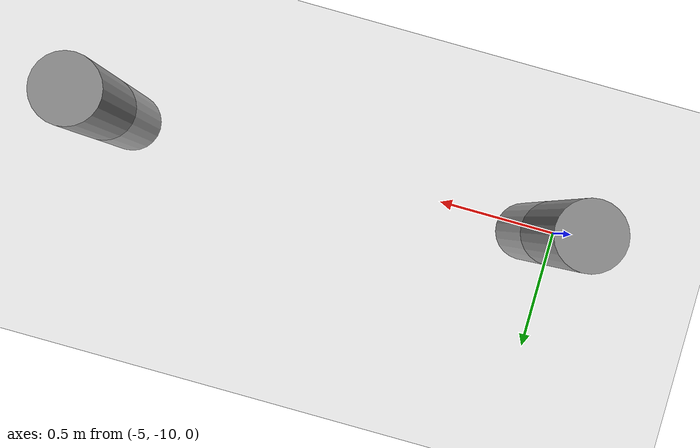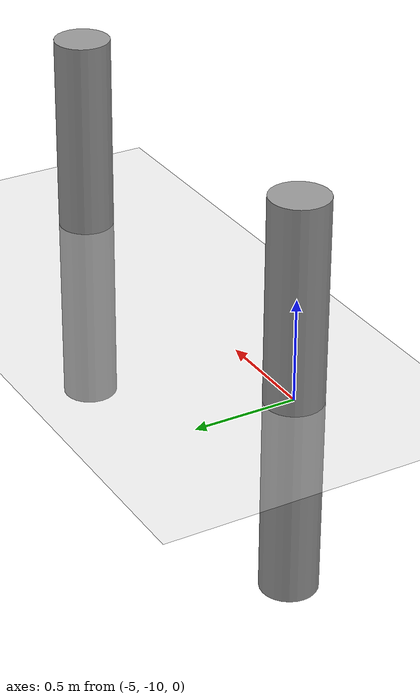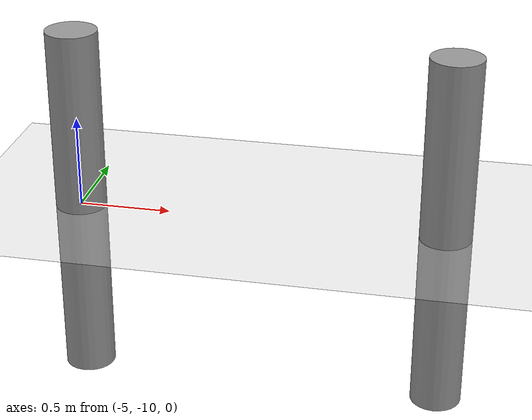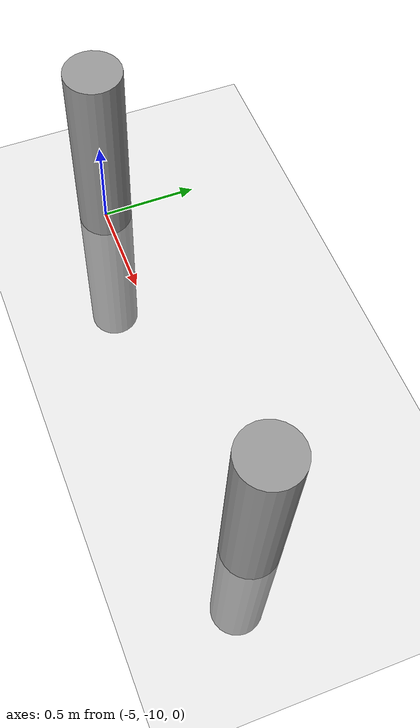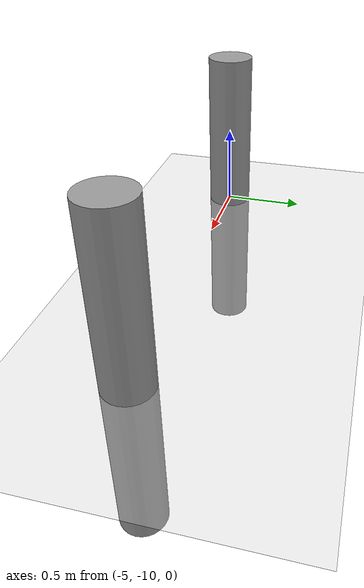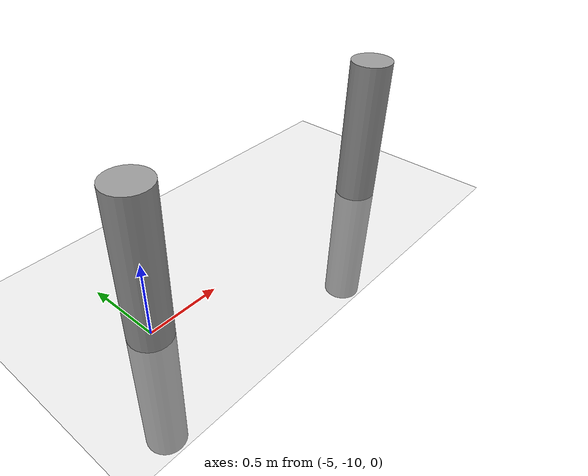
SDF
<sdf version="1.6">
 <world name="default">
  <model name="ground_plane">
   <static>1</static>
   <link name="link">
    <collision name="collision">
     <geometry><plane><normal>0 0 1</normal><size>100 100</size></plane></geometry>
     <surface><friction><ode><mu>100</mu><mu2>50</mu2></ode></friction></surface>
    </collision>
    <visual name="visual">
     <cast_shadows>0</cast_shadows>
     <geometry><plane><normal>0 0 1</normal><size>100 100</size></plane></geometry>
     <material>
      <script><uri>file://media/materials/scripts/gazebo.material</uri><name>Gazebo/Grey</name></script>
     </material>
    </visual>
   </link>
  </model>
  <model name="my_cylinder014_clone_22">
   <pose>-3 -10 0 0 -0 0</pose>
   <link name="my_cylinder014::link">
    <inertial>
     <mass>1</mass>
     <inertia><ixx>0.145833</ixx><ixy>0</ixy><ixz>0</ixz><iyy>0.145833</iyy><iyz>0</iyz><izz>0.125</izz></inertia>
    </inertial>
    <visual name="visual">
     <geometry><cylinder><radius>0.14</radius><length>2</length></cylinder></geometry>
     <material>
      <script><name>Gazebo/Grey</name><uri>file://media/materials/scripts/gazebo.material</uri></script>
      <ambient>0.3 0.3 0.3 1</ambient>
      <diffuse>0.7 0.7 0.7 1</diffuse>
      <specular>1 0.01 0.01 1</specular>
      <emissive>0 0 0 1</emissive>
      <shader type="vertex"><normal_map>__default__</normal_map></shader>
     </material>
    </visual>
    <collision name="collision">
     <geometry><cylinder><radius>0.14</radius><length>2</length></cylinder></geometry>
     <surface>
      <friction>
       <ode><mu>1</mu><mu2>1</mu2><fdir1>0 0 0</fdir1><slip1>0</slip1><slip2>0</slip2></ode>
       <torsional>
        <coefficient>1</coefficient>
        <patch_radius>0</patch_radius>
        <surface_radius>0</surface_radius>
        <use_patch_radius>1</use_patch_radius>
        <ode><slip>0</slip></ode>
       </torsional>
      </friction>
      <bounce><restitution_coefficient>0</restitution_coefficient><threshold>1e+06</threshold></bounce>
      <contact>
       <collide_without_contact>0</collide_without_contact>
       <collide_without_contact_bitmask>1</collide_without_contact_bitmask>
       <collide_bitmask>1</collide_bitmask>
       <ode>
        <soft_cfm>0</soft_cfm>
        <soft_erp>0.2</soft_erp>
        <kp>1e+13</kp>
        <kd>1</kd>
        <max_vel>0.01</max_vel>
        <min_depth>0</min_depth>
       </ode>
       <bullet>
        <split_impulse>1</split_impulse>
        <split_impulse_penetration_threshold>-0.01</split_impulse_penetration_threshold>
        <soft_cfm>0</soft_cfm>
        <soft_erp>0.2</soft_erp>
        <kp>1e+13</kp>
        <kd>1</kd>
       </bullet>
      </contact>
     </surface>
    </collision>
   </link>
   <static>1</static>
  </model>
  <model name="my_cylinder014_clone_22">
   <pose>-3 -10 0 0 -0 0</pose>
   <link name="my_cylinder014::link">
    <inertial>
     <mass>1</mass>
     <inertia><ixx>0.145833</ixx><ixy>0</ixy><ixz>0</ixz><iyy>0.145833</iyy><iyz>0</iyz><izz>0.125</izz></inertia>
    </inertial>
    <visual name="visual">
     <geometry><cylinder><radius>0.14</radius><length>2</length></cylinder></geometry>
     <material>
      <script><name>Gazebo/Grey</name><uri>file://media/materials/scripts/gazebo.material</uri></script>
      <ambient>0.3 0.3 0.3 1</ambient>
      <diffuse>0.7 0.7 0.7 1</diffuse>
      <specular>1 0.01 0.01 1</specular>
      <emissive>0 0 0 1</emissive>
      <shader type="vertex"><normal_map>__default__</normal_map></shader>
     </material>
    </visual>
    <collision name="collision">
     <geometry><cylinder><radius>0.14</radius><length>2</length></cylinder></geometry>
     <surface>
      <friction>
       <ode><mu>1</mu><mu2>1</mu2><fdir1>0 0 0</fdir1><slip1>0</slip1><slip2>0</slip2></ode>
       <torsional>
        <coefficient>1</coefficient>
        <patch_radius>0</patch_radius>
        <surface_radius>0</surface_radius>
        <use_patch_radius>1</use_patch_radius>
        <ode><slip>0</slip></ode>
       </torsional>
      </friction>
      <bounce><restitution_coefficient>0</restitution_coefficient><threshold>1e+06</threshold></bounce>
      <contact>
       <collide_without_contact>0</collide_without_contact>
       <collide_without_contact_bitmask>1</collide_without_contact_bitmask>
       <collide_bitmask>1</collide_bitmask>
       <ode>
        <soft_cfm>0</soft_cfm>
        <soft_erp>0.2</soft_erp>
        <kp>1e+13</kp>
        <kd>1</kd>
        <max_vel>0.01</max_vel>
        <min_depth>0</min_depth>
       </ode>
       <bullet>
        <split_impulse>1</split_impulse>
        <split_impulse_penetration_threshold>-0.01</split_impulse_penetration_threshold>
        <soft_cfm>0</soft_cfm>
        <soft_erp>0.2</soft_erp>
        <kp>1e+13</kp>
        <kd>1</kd>
       </bullet>
      </contact>
     </surface>
    </collision>
   </link>
   <static>1</static>
  </model>
  <model name="my_cylinder014_clone_21">
   <pose>-5 -10 0 0 -0 0</pose>
   <link name="my_cylinder014::link">
    <inertial>
     <mass>1</mass>
     <inertia><ixx>0.145833</ixx><ixy>0</ixy><ixz>0</ixz><iyy>0.145833</iyy><iyz>0</iyz><izz>0.125</izz></inertia>
    </inertial>
    <visual name="visual">
     <geometry><cylinder><radius>0.14</radius><length>2</length></cylinder></geometry>
     <material>
      <script><name>Gazebo/Grey</name><uri>file://media/materials/scripts/gazebo.material</uri></script>
      <ambient>0.3 0.3 0.3 1</ambient>
      <diffuse>0.7 0.7 0.7 1</diffuse>
      <specular>1 0.01 0.01 1</specular>
      <emissive>0 0 0 1</emissive>
      <shader type="vertex"><normal_map>__default__</normal_map></shader>
     </material>
    </visual>
    <collision name="collision">
     <geometry><cylinder><radius>0.14</radius><length>2</length></cylinder></geometry>
     <surface>
      <friction>
       <ode><mu>1</mu><mu2>1</mu2><fdir1>0 0 0</fdir1><slip1>0</slip1><slip2>0</slip2></ode>
       <torsional>
        <coefficient>1</coefficient>
        <patch_radius>0</patch_radius>
        <surface_radius>0</surface_radius>
        <use_patch_radius>1</use_patch_radius>
        <ode><slip>0</slip></ode>
       </torsional>
      </friction>
      <bounce><restitution_coefficient>0</restitution_coefficient><threshold>1e+06</threshold></bounce>
      <contact>
       <collide_without_contact>0</collide_without_contact>
       <collide_without_contact_bitmask>1</collide_without_contact_bitmask>
       <collide_bitmask>1</collide_bitmask>
       <ode>
        <soft_cfm>0</soft_cfm>
        <soft_erp>0.2</soft_erp>
        <kp>1e+13</kp>
        <kd>1</kd>
        <max_vel>0.01</max_vel>
        <min_depth>0</min_depth>
       </ode>
       <bullet>
        <split_impulse>1</split_impulse>
        <split_impulse_penetration_threshold>-0.01</split_impulse_penetration_threshold>
        <soft_cfm>0</soft_cfm>
        <soft_erp>0.2</soft_erp>
        <kp>1e+13</kp>
        <kd>1</kd>
       </bullet>
      </contact>
     </surface>
    </collision>
   </link>
   <static>1</static>
  </model>
 </world>
</sdf>
